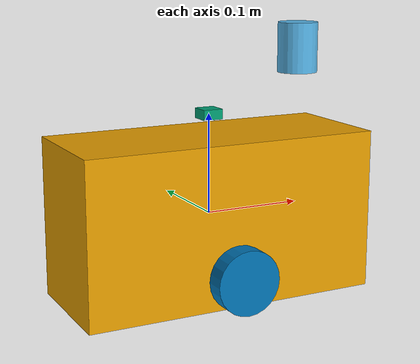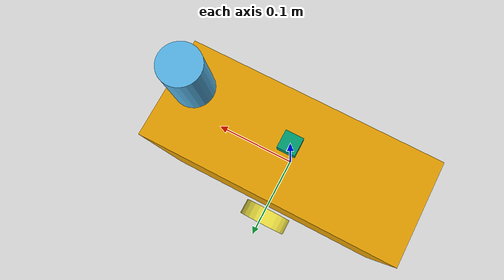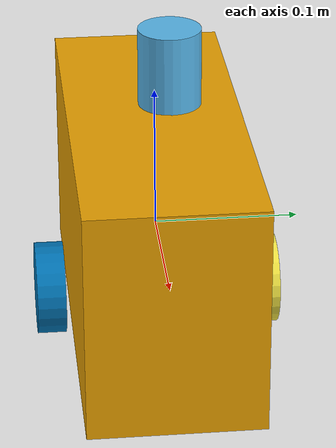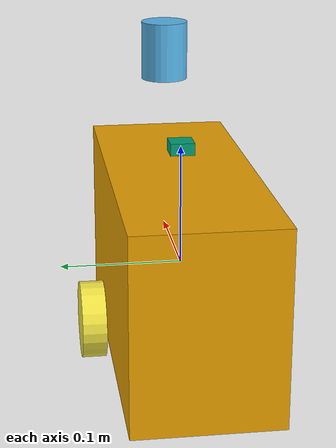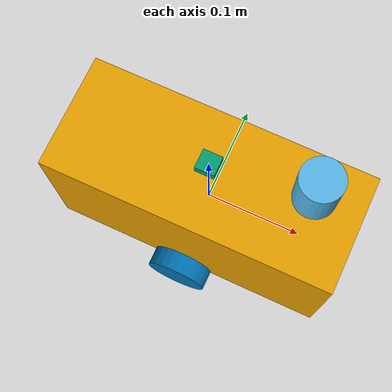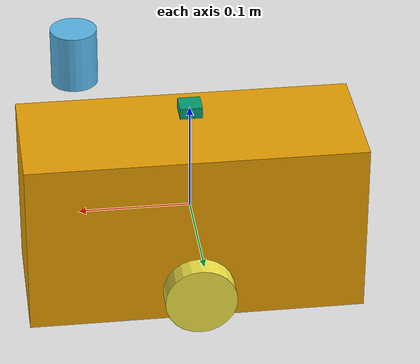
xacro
<?xml version="1.0"?>
<robot xmlns:xacro="http://www.ros.org/wiki/xacro" name="fishbot">
    <xacro:property name="base_length" value="0.30"/>
    <xacro:property name="base_width" value="0.12"/>
    <xacro:property name="base_height" value="0.16"/>
    <xacro:property name="laser_x" value="0.10"/>
    <xacro:property name="laser_z" value="${base_height/2 + 0.08}"/>
    <xacro:property name="wheel_radius" value="0.032"/>
    <xacro:property name="wheel_thickness" value="0.02"/>
    <xacro:property name="wheel_offset_y" value="0.075"/>
    <xacro:property name="caster_radius" value="0.01"/>
    <xacro:property name="caster_z" value="${-base_height/2 + caster_radius}"/>
    <xacro:property name="imu_length" value="0.02"/>
    <xacro:property name="imu_width" value="0.02"/>
    <xacro:property name="imu_height" value="0.01"/>
    <xacro:property name="imu_z" value="${base_height/2 + 0.02}"/>
    <xacro:property name="imu_x" value="0.0"/>

    <link name="base_link">
        <visual>
            <origin xyz="0 0 0.0" rpy="0 0 0.0"/>
            <geometry>
            <box size="${base_length} ${base_width} ${base_height}"/>
            </geometry>
        </visual>
        <collision>
            <origin xyz="0 0 0.0" rpy="0 0 0.0"/>
            <geometry>
                <box size="${base_length} ${base_width} ${base_height}"/>
            </geometry>
        </collision>
        <inertial>
            <mass value="2.0"/>
            <origin xyz="0 0 0" rpy="0 0 0"/>
            <inertia ixx="0.0267" ixy="0.0" ixz="0.0" iyy="0.0267" iyz="0.0" izz="0.0267"/>
        </inertial>
    </link>

    <link name="laser_frame">
        <visual>
            <origin xyz="0 0 0.0" rpy="0 0 0.0"/>
            <geometry>
                <cylinder length="0.05" radius="0.02"/>
            </geometry>
        </visual>
        <collision>
            <origin xyz="0 0 0.0" rpy="0 0 0.0"/>
            <geometry>
                <cylinder length="0.05" radius="0.02"/>
            </geometry>
        </collision>
        <inertial>
            <mass value="0.1"/>
            <origin xyz="0 0 0" rpy="0 0 0"/>
            <inertia ixx="0.000031" ixy="0.0" ixz="0.0" iyy="0.000031" iyz="0.0" izz="0.00002"/>
        </inertial>
    </link>

    <joint name="laser_joint" type="fixed">
    <parent link="base_link"/>
    <child link="laser_frame"/>
    <origin xyz="${laser_x} 0 ${laser_z}" rpy="0 0 0"/>
    </joint>

<xacro:macro name="wheel" params="name y">
    <link name="${name}_wheel_link">
        <visual>
            <origin xyz="0 0 0" rpy="1.5707 0 0"/>
            <geometry>
                <cylinder radius="${wheel_radius}" length="${wheel_thickness}"/>
            </geometry>
        </visual>
        <collision>
            <origin xyz="0 0 0" rpy="1.5707 0 0"/>
            <geometry>
                <cylinder radius="${wheel_radius}" length="${wheel_thickness}"/>
            </geometry>
        </collision>
        <inertial>
            <mass value="0.05"/>
            <origin xyz="0 0 0" rpy="0 0 0"/>
            <inertia ixx="0.00001" ixy="0.0" ixz="0.0" iyy="0.00001" iyz="0.0" izz="0.00001"/>
        </inertial>
    </link>

    <joint name="${name}_wheel_joint" type="continuous">
    <parent link="base_link"/>
    <child link="${name}_wheel_link"/>
    <origin xyz="0 ${y} ${-base_height/2 + wheel_radius}" rpy="0 0 0"/>
    <axis xyz="0 1 0"/>
    </joint>
</xacro:macro>

<xacro:macro name="caster" params="name x">
    <link name="${name}_caster_link">
        <visual>
            <origin xyz="0 0 0" rpy="0 0 0"/>
            <geometry>
                <sphere radius="${caster_radius}"/>
            </geometry>
        </visual>
        <collision>
            <origin xyz="0 0 0" rpy="0 0 0"/>
            <geometry>
                <sphere radius="${caster_radius}"/>
            </geometry>
        </collision>
        <inertial>
            <mass value="0.01"/>
            <origin xyz="0 0 0" rpy="0 0 0"/>
            <inertia ixx="0.0000004" ixy="0.0" ixz="0.0" iyy="0.0000004" iyz="0.0" izz="0.0000004"/>
        </inertial>
    </link>
    <joint name="${name}_caster_joint" type="fixed">
    <parent link="base_link"/>
    <child link="${name}_caster_link"/>
    <origin xyz="${x} 0 ${caster_z}" rpy="0 0 0"/>
    </joint>
</xacro:macro>

<link name="imu_link">
    <visual>
        <origin xyz="0 0 0" rpy="0 0 0"/>
        <geometry>
            <box size="${imu_length} ${imu_width} ${imu_height}"/>
        </geometry>
    </visual>
    <collision>
        <origin xyz="0 0 0" rpy="0 0 0"/>
        <geometry>
            <box size="${imu_length} ${imu_width} ${imu_height}"/>
        </geometry>
    </collision>
    <inertial>
        <mass value="0.01"/>
        <origin xyz="0 0 0" rpy="0 0 0"/>
        <inertia ixx="0.00000042" ixy="0.0" ixz="0.0" iyy="0.00000042" iyz="0.0" izz="0.00000042"/>
    </inertial>
</link>
<joint name="imu_joint" type="fixed">
    <parent link="base_link"/>
    <child link="imu_link"/>
    <origin xyz="${imu_x} 0 ${imu_z}" rpy="0 0 0"/>
</joint>

<xacro:wheel name="left" y="0.075"/>
<xacro:wheel name="right" y="-0.075"/>

<xacro:caster name="front" x="0.13"/>
<xacro:caster name="back" x="-0.13"/>

<gazebo>
    <plugin name="diff_drive" filename="libgazebo_ros_diff_drive.so">
        <left_joint>left_wheel_joint</left_joint>
        <right_joint>right_wheel_joint</right_joint>

        <wheel_separation>0.15</wheel_separation>
        <wheel_diameter>0.064</wheel_diameter>

        <max_wheel_torque>20</max_wheel_torque>
        <max_wheel_acceleration>1.0</max_wheel_acceleration>

        <command_topic>cmd_vel</command_topic>

        <publish_odom>true</publish_odom>
        <publish_odom_tf>true</publish_odom_tf>
        <odometry_frame>odom</odometry_frame>
        <robot_base_frame>base_link</robot_base_frame>
    </plugin>
</gazebo>

<gazebo reference="laser_frame">
    <sensor name="laser_sensor" type="ray">
        <pose>0 0 0 0 0 0</pose>
        <visualize>false</visualize>
        <update_rate>5</update_rate>
        <ray>
            <scan>
                <horizontal>
                    <samples>360</samples>
                    <resolution>1</resolution>
                    <min_angle>-3.14159</min_angle>
                    <max_angle>3.14159</max_angle>
                </horizontal>
            </scan>
            <range>
                <min>0.10</min>
                <max>10.0</max>
                <resolution>0.01</resolution>
            </range>
            <noise>
                <type>Gaussian</type>
                <mean>0.0</mean>
                <stddev>0.01</stddev>
            </noise>
        </ray>
        <plugin name="laser_plugin" filename="libgazebo_ros_ray_sensor.so">
            <ros>
                <remapping>~/out:=scan</remapping>
            </ros>
            <output_type>sensor_msgs/LaserScan</output_type>
            <frame_name>laser_frame</frame_name>
        </plugin>
    </sensor>
</gazebo>

</robot>
